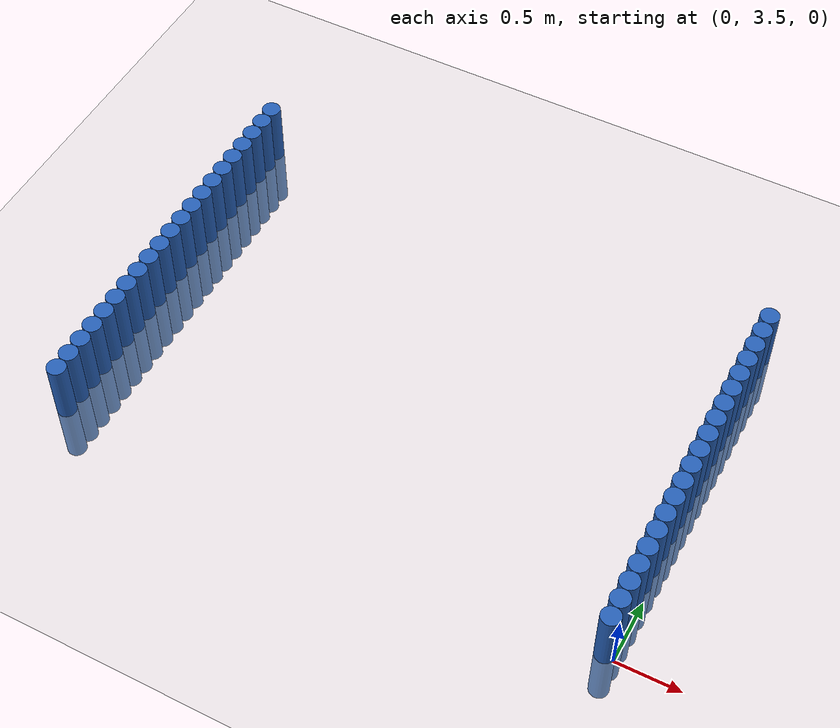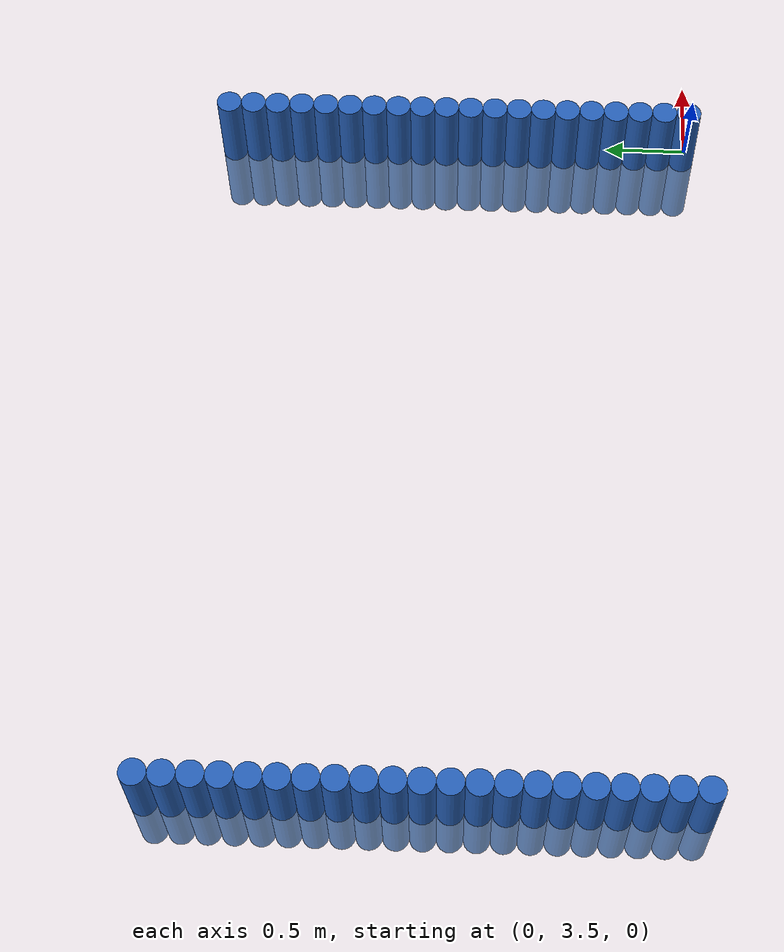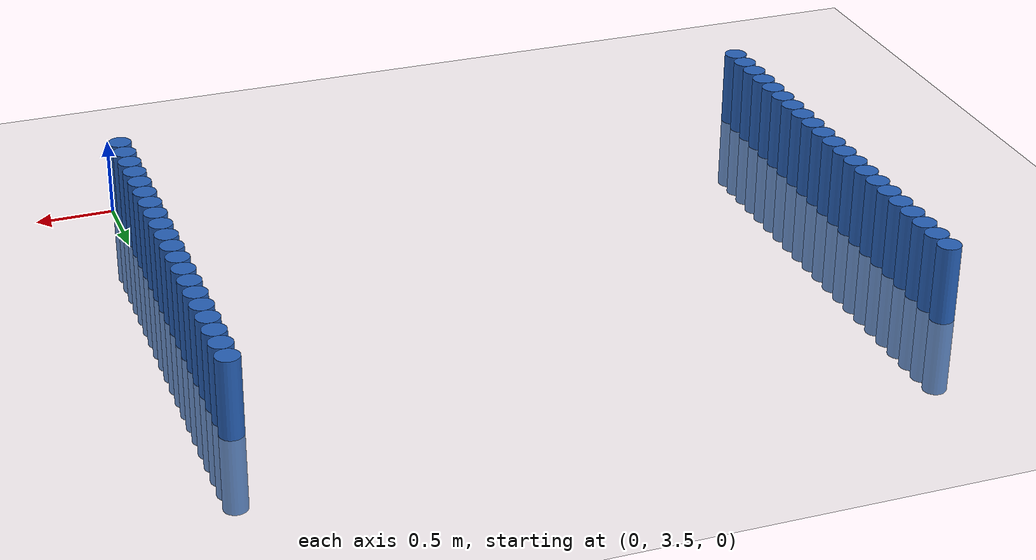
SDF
<sdf version="1.6">
 <world name="default">
  <model name="ground_plane">
   <static>1</static>
   <link name="link">
    <collision name="collision">
     <geometry><plane><normal>0 0 1</normal><size>100 100</size></plane></geometry>
     <surface><friction><ode><mu>100</mu><mu2>50</mu2></ode></friction></surface>
    </collision>
    <visual name="visual">
     <cast_shadows>0</cast_shadows>
     <geometry><plane><normal>0 0 1</normal><size>100 100</size></plane></geometry>
     <material>
      <script><uri>file://media/materials/scripts/gazebo.material</uri><name>Gazebo/Grey</name></script>
     </material>
    </visual>
   </link>
  </model>
  <model name="unit_cylinder_74">
   <static>1</static>
   <pose>-0.075000 3.525000 0.000000 0.000000 0.000000 0.000000</pose>
   <link name="link">
    <inertial>
     <mass>1</mass>
     <inertia><ixx>0.145833</ixx><ixy>0</ixy><ixz>0</ixz><iyy>0.145833</iyy><iyz>0</iyz><izz>0.125</izz></inertia>
    </inertial>
    <collision name="collision">
     <geometry><cylinder><radius>0.075000</radius><length>1</length></cylinder></geometry>
    </collision>
    <visual name="visual">
     <geometry><cylinder><radius>0.075000</radius><length>1</length></cylinder></geometry>
     <material>
      <ambient>0.152000 0.379000 0.720000 1</ambient>
      <diffuse>0.152000 0.379000 0.720000 1</diffuse>
     </material>
     <material>
      <script><name>Gazebo/Grey</name><uri>file://media/materials/scripts/gazebo.material</uri></script>
     </material>
    </visual>
   </link>
  </model>
  <model name="unit_cylinder_75">
   <static>1</static>
   <pose>-4.425000 3.525000 0.000000 0.000000 0.000000 0.000000</pose>
   <link name="link">
    <inertial>
     <mass>1</mass>
     <inertia><ixx>0.145833</ixx><ixy>0</ixy><ixz>0</ixz><iyy>0.145833</iyy><iyz>0</iyz><izz>0.125</izz></inertia>
    </inertial>
    <collision name="collision">
     <geometry><cylinder><radius>0.075000</radius><length>1</length></cylinder></geometry>
    </collision>
    <visual name="visual">
     <geometry><cylinder><radius>0.075000</radius><length>1</length></cylinder></geometry>
     <material>
      <ambient>0.152000 0.379000 0.720000 1</ambient>
      <diffuse>0.152000 0.379000 0.720000 1</diffuse>
     </material>
     <material>
      <script><name>Gazebo/Grey</name><uri>file://media/materials/scripts/gazebo.material</uri></script>
     </material>
    </visual>
   </link>
  </model>
  <model name="unit_cylinder_76">
   <static>1</static>
   <pose>-0.075000 3.675000 0.000000 0.000000 0.000000 0.000000</pose>
   <link name="link">
    <inertial>
     <mass>1</mass>
     <inertia><ixx>0.145833</ixx><ixy>0</ixy><ixz>0</ixz><iyy>0.145833</iyy><iyz>0</iyz><izz>0.125</izz></inertia>
    </inertial>
    <collision name="collision">
     <geometry><cylinder><radius>0.075000</radius><length>1</length></cylinder></geometry>
    </collision>
    <visual name="visual">
     <geometry><cylinder><radius>0.075000</radius><length>1</length></cylinder></geometry>
     <material>
      <ambient>0.152000 0.379000 0.720000 1</ambient>
      <diffuse>0.152000 0.379000 0.720000 1</diffuse>
     </material>
     <material>
      <script><name>Gazebo/Grey</name><uri>file://media/materials/scripts/gazebo.material</uri></script>
     </material>
    </visual>
   </link>
  </model>
  <model name="unit_cylinder_77">
   <static>1</static>
   <pose>-4.425000 3.675000 0.000000 0.000000 0.000000 0.000000</pose>
   <link name="link">
    <inertial>
     <mass>1</mass>
     <inertia><ixx>0.145833</ixx><ixy>0</ixy><ixz>0</ixz><iyy>0.145833</iyy><iyz>0</iyz><izz>0.125</izz></inertia>
    </inertial>
    <collision name="collision">
     <geometry><cylinder><radius>0.075000</radius><length>1</length></cylinder></geometry>
    </collision>
    <visual name="visual">
     <geometry><cylinder><radius>0.075000</radius><length>1</length></cylinder></geometry>
     <material>
      <ambient>0.152000 0.379000 0.720000 1</ambient>
      <diffuse>0.152000 0.379000 0.720000 1</diffuse>
     </material>
     <material>
      <script><name>Gazebo/Grey</name><uri>file://media/materials/scripts/gazebo.material</uri></script>
     </material>
    </visual>
   </link>
  </model>
  <model name="unit_cylinder_78">
   <static>1</static>
   <pose>-0.075000 3.825000 0.000000 0.000000 0.000000 0.000000</pose>
   <link name="link">
    <inertial>
     <mass>1</mass>
     <inertia><ixx>0.145833</ixx><ixy>0</ixy><ixz>0</ixz><iyy>0.145833</iyy><iyz>0</iyz><izz>0.125</izz></inertia>
    </inertial>
    <collision name="collision">
     <geometry><cylinder><radius>0.075000</radius><length>1</length></cylinder></geometry>
    </collision>
    <visual name="visual">
     <geometry><cylinder><radius>0.075000</radius><length>1</length></cylinder></geometry>
     <material>
      <ambient>0.152000 0.379000 0.720000 1</ambient>
      <diffuse>0.152000 0.379000 0.720000 1</diffuse>
     </material>
     <material>
      <script><name>Gazebo/Grey</name><uri>file://media/materials/scripts/gazebo.material</uri></script>
     </material>
    </visual>
   </link>
  </model>
  <model name="unit_cylinder_79">
   <static>1</static>
   <pose>-4.425000 3.825000 0.000000 0.000000 0.000000 0.000000</pose>
   <link name="link">
    <inertial>
     <mass>1</mass>
     <inertia><ixx>0.145833</ixx><ixy>0</ixy><ixz>0</ixz><iyy>0.145833</iyy><iyz>0</iyz><izz>0.125</izz></inertia>
    </inertial>
    <collision name="collision">
     <geometry><cylinder><radius>0.075000</radius><length>1</length></cylinder></geometry>
    </collision>
    <visual name="visual">
     <geometry><cylinder><radius>0.075000</radius><length>1</length></cylinder></geometry>
     <material>
      <ambient>0.152000 0.379000 0.720000 1</ambient>
      <diffuse>0.152000 0.379000 0.720000 1</diffuse>
     </material>
     <material>
      <script><name>Gazebo/Grey</name><uri>file://media/materials/scripts/gazebo.material</uri></script>
     </material>
    </visual>
   </link>
  </model>
  <model name="unit_cylinder_80">
   <static>1</static>
   <pose>-0.075000 3.975000 0.000000 0.000000 0.000000 0.000000</pose>
   <link name="link">
    <inertial>
     <mass>1</mass>
     <inertia><ixx>0.145833</ixx><ixy>0</ixy><ixz>0</ixz><iyy>0.145833</iyy><iyz>0</iyz><izz>0.125</izz></inertia>
    </inertial>
    <collision name="collision">
     <geometry><cylinder><radius>0.075000</radius><length>1</length></cylinder></geometry>
    </collision>
    <visual name="visual">
     <geometry><cylinder><radius>0.075000</radius><length>1</length></cylinder></geometry>
     <material>
      <ambient>0.152000 0.379000 0.720000 1</ambient>
      <diffuse>0.152000 0.379000 0.720000 1</diffuse>
     </material>
     <material>
      <script><name>Gazebo/Grey</name><uri>file://media/materials/scripts/gazebo.material</uri></script>
     </material>
    </visual>
   </link>
  </model>
  <model name="unit_cylinder_81">
   <static>1</static>
   <pose>-4.425000 3.975000 0.000000 0.000000 0.000000 0.000000</pose>
   <link name="link">
    <inertial>
     <mass>1</mass>
     <inertia><ixx>0.145833</ixx><ixy>0</ixy><ixz>0</ixz><iyy>0.145833</iyy><iyz>0</iyz><izz>0.125</izz></inertia>
    </inertial>
    <collision name="collision">
     <geometry><cylinder><radius>0.075000</radius><length>1</length></cylinder></geometry>
    </collision>
    <visual name="visual">
     <geometry><cylinder><radius>0.075000</radius><length>1</length></cylinder></geometry>
     <material>
      <ambient>0.152000 0.379000 0.720000 1</ambient>
      <diffuse>0.152000 0.379000 0.720000 1</diffuse>
     </material>
     <material>
      <script><name>Gazebo/Grey</name><uri>file://media/materials/scripts/gazebo.material</uri></script>
     </material>
    </visual>
   </link>
  </model>
  <model name="unit_cylinder_82">
   <static>1</static>
   <pose>-0.075000 4.125000 0.000000 0.000000 0.000000 0.000000</pose>
   <link name="link">
    <inertial>
     <mass>1</mass>
     <inertia><ixx>0.145833</ixx><ixy>0</ixy><ixz>0</ixz><iyy>0.145833</iyy><iyz>0</iyz><izz>0.125</izz></inertia>
    </inertial>
    <collision name="collision">
     <geometry><cylinder><radius>0.075000</radius><length>1</length></cylinder></geometry>
    </collision>
    <visual name="visual">
     <geometry><cylinder><radius>0.075000</radius><length>1</length></cylinder></geometry>
     <material>
      <ambient>0.152000 0.379000 0.720000 1</ambient>
      <diffuse>0.152000 0.379000 0.720000 1</diffuse>
     </material>
     <material>
      <script><name>Gazebo/Grey</name><uri>file://media/materials/scripts/gazebo.material</uri></script>
     </material>
    </visual>
   </link>
  </model>
  <model name="unit_cylinder_83">
   <static>1</static>
   <pose>-4.425000 4.125000 0.000000 0.000000 0.000000 0.000000</pose>
   <link name="link">
    <inertial>
     <mass>1</mass>
     <inertia><ixx>0.145833</ixx><ixy>0</ixy><ixz>0</ixz><iyy>0.145833</iyy><iyz>0</iyz><izz>0.125</izz></inertia>
    </inertial>
    <collision name="collision">
     <geometry><cylinder><radius>0.075000</radius><length>1</length></cylinder></geometry>
    </collision>
    <visual name="visual">
     <geometry><cylinder><radius>0.075000</radius><length>1</length></cylinder></geometry>
     <material>
      <ambient>0.152000 0.379000 0.720000 1</ambient>
      <diffuse>0.152000 0.379000 0.720000 1</diffuse>
     </material>
     <material>
      <script><name>Gazebo/Grey</name><uri>file://media/materials/scripts/gazebo.material</uri></script>
     </material>
    </visual>
   </link>
  </model>
  <model name="unit_cylinder_84">
   <static>1</static>
   <pose>-0.075000 4.275000 0.000000 0.000000 0.000000 0.000000</pose>
   <link name="link">
    <inertial>
     <mass>1</mass>
     <inertia><ixx>0.145833</ixx><ixy>0</ixy><ixz>0</ixz><iyy>0.145833</iyy><iyz>0</iyz><izz>0.125</izz></inertia>
    </inertial>
    <collision name="collision">
     <geometry><cylinder><radius>0.075000</radius><length>1</length></cylinder></geometry>
    </collision>
    <visual name="visual">
     <geometry><cylinder><radius>0.075000</radius><length>1</length></cylinder></geometry>
     <material>
      <ambient>0.152000 0.379000 0.720000 1</ambient>
      <diffuse>0.152000 0.379000 0.720000 1</diffuse>
     </material>
     <material>
      <script><name>Gazebo/Grey</name><uri>file://media/materials/scripts/gazebo.material</uri></script>
     </material>
    </visual>
   </link>
  </model>
  <model name="unit_cylinder_85">
   <static>1</static>
   <pose>-4.425000 4.275000 0.000000 0.000000 0.000000 0.000000</pose>
   <link name="link">
    <inertial>
     <mass>1</mass>
     <inertia><ixx>0.145833</ixx><ixy>0</ixy><ixz>0</ixz><iyy>0.145833</iyy><iyz>0</iyz><izz>0.125</izz></inertia>
    </inertial>
    <collision name="collision">
     <geometry><cylinder><radius>0.075000</radius><length>1</length></cylinder></geometry>
    </collision>
    <visual name="visual">
     <geometry><cylinder><radius>0.075000</radius><length>1</length></cylinder></geometry>
     <material>
      <ambient>0.152000 0.379000 0.720000 1</ambient>
      <diffuse>0.152000 0.379000 0.720000 1</diffuse>
     </material>
     <material>
      <script><name>Gazebo/Grey</name><uri>file://media/materials/scripts/gazebo.material</uri></script>
     </material>
    </visual>
   </link>
  </model>
  <model name="unit_cylinder_86">
   <static>1</static>
   <pose>-0.075000 4.425000 0.000000 0.000000 0.000000 0.000000</pose>
   <link name="link">
    <inertial>
     <mass>1</mass>
     <inertia><ixx>0.145833</ixx><ixy>0</ixy><ixz>0</ixz><iyy>0.145833</iyy><iyz>0</iyz><izz>0.125</izz></inertia>
    </inertial>
    <collision name="collision">
     <geometry><cylinder><radius>0.075000</radius><length>1</length></cylinder></geometry>
    </collision>
    <visual name="visual">
     <geometry><cylinder><radius>0.075000</radius><length>1</length></cylinder></geometry>
     <material>
      <ambient>0.152000 0.379000 0.720000 1</ambient>
      <diffuse>0.152000 0.379000 0.720000 1</diffuse>
     </material>
     <material>
      <script><name>Gazebo/Grey</name><uri>file://media/materials/scripts/gazebo.material</uri></script>
     </material>
    </visual>
   </link>
  </model>
  <model name="unit_cylinder_87">
   <static>1</static>
   <pose>-4.425000 4.425000 0.000000 0.000000 0.000000 0.000000</pose>
   <link name="link">
    <inertial>
     <mass>1</mass>
     <inertia><ixx>0.145833</ixx><ixy>0</ixy><ixz>0</ixz><iyy>0.145833</iyy><iyz>0</iyz><izz>0.125</izz></inertia>
    </inertial>
    <collision name="collision">
     <geometry><cylinder><radius>0.075000</radius><length>1</length></cylinder></geometry>
    </collision>
    <visual name="visual">
     <geometry><cylinder><radius>0.075000</radius><length>1</length></cylinder></geometry>
     <material>
      <ambient>0.152000 0.379000 0.720000 1</ambient>
      <diffuse>0.152000 0.379000 0.720000 1</diffuse>
     </material>
     <material>
      <script><name>Gazebo/Grey</name><uri>file://media/materials/scripts/gazebo.material</uri></script>
     </material>
    </visual>
   </link>
  </model>
  <model name="unit_cylinder_88">
   <static>1</static>
   <pose>-0.075000 4.575000 0.000000 0.000000 0.000000 0.000000</pose>
   <link name="link">
    <inertial>
     <mass>1</mass>
     <inertia><ixx>0.145833</ixx><ixy>0</ixy><ixz>0</ixz><iyy>0.145833</iyy><iyz>0</iyz><izz>0.125</izz></inertia>
    </inertial>
    <collision name="collision">
     <geometry><cylinder><radius>0.075000</radius><length>1</length></cylinder></geometry>
    </collision>
    <visual name="visual">
     <geometry><cylinder><radius>0.075000</radius><length>1</length></cylinder></geometry>
     <material>
      <ambient>0.152000 0.379000 0.720000 1</ambient>
      <diffuse>0.152000 0.379000 0.720000 1</diffuse>
     </material>
     <material>
      <script><name>Gazebo/Grey</name><uri>file://media/materials/scripts/gazebo.material</uri></script>
     </material>
    </visual>
   </link>
  </model>
  <model name="unit_cylinder_89">
   <static>1</static>
   <pose>-4.425000 4.575000 0.000000 0.000000 0.000000 0.000000</pose>
   <link name="link">
    <inertial>
     <mass>1</mass>
     <inertia><ixx>0.145833</ixx><ixy>0</ixy><ixz>0</ixz><iyy>0.145833</iyy><iyz>0</iyz><izz>0.125</izz></inertia>
    </inertial>
    <collision name="collision">
     <geometry><cylinder><radius>0.075000</radius><length>1</length></cylinder></geometry>
    </collision>
    <visual name="visual">
     <geometry><cylinder><radius>0.075000</radius><length>1</length></cylinder></geometry>
     <material>
      <ambient>0.152000 0.379000 0.720000 1</ambient>
      <diffuse>0.152000 0.379000 0.720000 1</diffuse>
     </material>
     <material>
      <script><name>Gazebo/Grey</name><uri>file://media/materials/scripts/gazebo.material</uri></script>
     </material>
    </visual>
   </link>
  </model>
  <model name="unit_cylinder_90">
   <static>1</static>
   <pose>-0.075000 4.725000 0.000000 0.000000 0.000000 0.000000</pose>
   <link name="link">
    <inertial>
     <mass>1</mass>
     <inertia><ixx>0.145833</ixx><ixy>0</ixy><ixz>0</ixz><iyy>0.145833</iyy><iyz>0</iyz><izz>0.125</izz></inertia>
    </inertial>
    <collision name="collision">
     <geometry><cylinder><radius>0.075000</radius><length>1</length></cylinder></geometry>
    </collision>
    <visual name="visual">
     <geometry><cylinder><radius>0.075000</radius><length>1</length></cylinder></geometry>
     <material>
      <ambient>0.152000 0.379000 0.720000 1</ambient>
      <diffuse>0.152000 0.379000 0.720000 1</diffuse>
     </material>
     <material>
      <script><name>Gazebo/Grey</name><uri>file://media/materials/scripts/gazebo.material</uri></script>
     </material>
    </visual>
   </link>
  </model>
  <model name="unit_cylinder_91">
   <static>1</static>
   <pose>-4.425000 4.725000 0.000000 0.000000 0.000000 0.000000</pose>
   <link name="link">
    <inertial>
     <mass>1</mass>
     <inertia><ixx>0.145833</ixx><ixy>0</ixy><ixz>0</ixz><iyy>0.145833</iyy><iyz>0</iyz><izz>0.125</izz></inertia>
    </inertial>
    <collision name="collision">
     <geometry><cylinder><radius>0.075000</radius><length>1</length></cylinder></geometry>
    </collision>
    <visual name="visual">
     <geometry><cylinder><radius>0.075000</radius><length>1</length></cylinder></geometry>
     <material>
      <ambient>0.152000 0.379000 0.720000 1</ambient>
      <diffuse>0.152000 0.379000 0.720000 1</diffuse>
     </material>
     <material>
      <script><name>Gazebo/Grey</name><uri>file://media/materials/scripts/gazebo.material</uri></script>
     </material>
    </visual>
   </link>
  </model>
  <model name="unit_cylinder_92">
   <static>1</static>
   <pose>-0.075000 4.875000 0.000000 0.000000 0.000000 0.000000</pose>
   <link name="link">
    <inertial>
     <mass>1</mass>
     <inertia><ixx>0.145833</ixx><ixy>0</ixy><ixz>0</ixz><iyy>0.145833</iyy><iyz>0</iyz><izz>0.125</izz></inertia>
    </inertial>
    <collision name="collision">
     <geometry><cylinder><radius>0.075000</radius><length>1</length></cylinder></geometry>
    </collision>
    <visual name="visual">
     <geometry><cylinder><radius>0.075000</radius><length>1</length></cylinder></geometry>
     <material>
      <ambient>0.152000 0.379000 0.720000 1</ambient>
      <diffuse>0.152000 0.379000 0.720000 1</diffuse>
     </material>
     <material>
      <script><name>Gazebo/Grey</name><uri>file://media/materials/scripts/gazebo.material</uri></script>
     </material>
    </visual>
   </link>
  </model>
  <model name="unit_cylinder_93">
   <static>1</static>
   <pose>-4.425000 4.875000 0.000000 0.000000 0.000000 0.000000</pose>
   <link name="link">
    <inertial>
     <mass>1</mass>
     <inertia><ixx>0.145833</ixx><ixy>0</ixy><ixz>0</ixz><iyy>0.145833</iyy><iyz>0</iyz><izz>0.125</izz></inertia>
    </inertial>
    <collision name="collision">
     <geometry><cylinder><radius>0.075000</radius><length>1</length></cylinder></geometry>
    </collision>
    <visual name="visual">
     <geometry><cylinder><radius>0.075000</radius><length>1</length></cylinder></geometry>
     <material>
      <ambient>0.152000 0.379000 0.720000 1</ambient>
      <diffuse>0.152000 0.379000 0.720000 1</diffuse>
     </material>
     <material>
      <script><name>Gazebo/Grey</name><uri>file://media/materials/scripts/gazebo.material</uri></script>
     </material>
    </visual>
   </link>
  </model>
  <model name="unit_cylinder_94">
   <static>1</static>
   <pose>-0.075000 5.025000 0.000000 0.000000 0.000000 0.000000</pose>
   <link name="link">
    <inertial>
     <mass>1</mass>
     <inertia><ixx>0.145833</ixx><ixy>0</ixy><ixz>0</ixz><iyy>0.145833</iyy><iyz>0</iyz><izz>0.125</izz></inertia>
    </inertial>
    <collision name="collision">
     <geometry><cylinder><radius>0.075000</radius><length>1</length></cylinder></geometry>
    </collision>
    <visual name="visual">
     <geometry><cylinder><radius>0.075000</radius><length>1</length></cylinder></geometry>
     <material>
      <ambient>0.152000 0.379000 0.720000 1</ambient>
      <diffuse>0.152000 0.379000 0.720000 1</diffuse>
     </material>
     <material>
      <script><name>Gazebo/Grey</name><uri>file://media/materials/scripts/gazebo.material</uri></script>
     </material>
    </visual>
   </link>
  </model>
  <model name="unit_cylinder_95">
   <static>1</static>
   <pose>-4.425000 5.025000 0.000000 0.000000 0.000000 0.000000</pose>
   <link name="link">
    <inertial>
     <mass>1</mass>
     <inertia><ixx>0.145833</ixx><ixy>0</ixy><ixz>0</ixz><iyy>0.145833</iyy><iyz>0</iyz><izz>0.125</izz></inertia>
    </inertial>
    <collision name="collision">
     <geometry><cylinder><radius>0.075000</radius><length>1</length></cylinder></geometry>
    </collision>
    <visual name="visual">
     <geometry><cylinder><radius>0.075000</radius><length>1</length></cylinder></geometry>
     <material>
      <ambient>0.152000 0.379000 0.720000 1</ambient>
      <diffuse>0.152000 0.379000 0.720000 1</diffuse>
     </material>
     <material>
      <script><name>Gazebo/Grey</name><uri>file://media/materials/scripts/gazebo.material</uri></script>
     </material>
    </visual>
   </link>
  </model>
  <model name="unit_cylinder_96">
   <static>1</static>
   <pose>-4.425000 5.175000 0.000000 0.000000 0.000000 0.000000</pose>
   <link name="link">
    <inertial>
     <mass>1</mass>
     <inertia><ixx>0.145833</ixx><ixy>0</ixy><ixz>0</ixz><iyy>0.145833</iyy><iyz>0</iyz><izz>0.125</izz></inertia>
    </inertial>
    <collision name="collision">
     <geometry><cylinder><radius>0.075000</radius><length>1</length></cylinder></geometry>
    </collision>
    <visual name="visual">
     <geometry><cylinder><radius>0.075000</radius><length>1</length></cylinder></geometry>
     <material>
      <ambient>0.152000 0.379000 0.720000 1</ambient>
      <diffuse>0.152000 0.379000 0.720000 1</diffuse>
     </material>
     <material>
      <script><name>Gazebo/Grey</name><uri>file://media/materials/scripts/gazebo.material</uri></script>
     </material>
    </visual>
   </link>
  </model>
  <model name="unit_cylinder_97">
   <static>1</static>
   <pose>-4.425000 5.325000 0.000000 0.000000 0.000000 0.000000</pose>
   <link name="link">
    <inertial>
     <mass>1</mass>
     <inertia><ixx>0.145833</ixx><ixy>0</ixy><ixz>0</ixz><iyy>0.145833</iyy><iyz>0</iyz><izz>0.125</izz></inertia>
    </inertial>
    <collision name="collision">
     <geometry><cylinder><radius>0.075000</radius><length>1</length></cylinder></geometry>
    </collision>
    <visual name="visual">
     <geometry><cylinder><radius>0.075000</radius><length>1</length></cylinder></geometry>
     <material>
      <ambient>0.152000 0.379000 0.720000 1</ambient>
      <diffuse>0.152000 0.379000 0.720000 1</diffuse>
     </material>
     <material>
      <script><name>Gazebo/Grey</name><uri>file://media/materials/scripts/gazebo.material</uri></script>
     </material>
    </visual>
   </link>
  </model>
  <model name="unit_cylinder_98">
   <static>1</static>
   <pose>-4.425000 5.475000 0.000000 0.000000 0.000000 0.000000</pose>
   <link name="link">
    <inertial>
     <mass>1</mass>
     <inertia><ixx>0.145833</ixx><ixy>0</ixy><ixz>0</ixz><iyy>0.145833</iyy><iyz>0</iyz><izz>0.125</izz></inertia>
    </inertial>
    <collision name="collision">
     <geometry><cylinder><radius>0.075000</radius><length>1</length></cylinder></geometry>
    </collision>
    <visual name="visual">
     <geometry><cylinder><radius>0.075000</radius><length>1</length></cylinder></geometry>
     <material>
      <ambient>0.152000 0.379000 0.720000 1</ambient>
      <diffuse>0.152000 0.379000 0.720000 1</diffuse>
     </material>
     <material>
      <script><name>Gazebo/Grey</name><uri>file://media/materials/scripts/gazebo.material</uri></script>
     </material>
    </visual>
   </link>
  </model>
  <model name="unit_cylinder_99">
   <static>1</static>
   <pose>-4.425000 5.625000 0.000000 0.000000 0.000000 0.000000</pose>
   <link name="link">
    <inertial>
     <mass>1</mass>
     <inertia><ixx>0.145833</ixx><ixy>0</ixy><ixz>0</ixz><iyy>0.145833</iyy><iyz>0</iyz><izz>0.125</izz></inertia>
    </inertial>
    <collision name="collision">
     <geometry><cylinder><radius>0.075000</radius><length>1</length></cylinder></geometry>
    </collision>
    <visual name="visual">
     <geometry><cylinder><radius>0.075000</radius><length>1</length></cylinder></geometry>
     <material>
      <ambient>0.152000 0.379000 0.720000 1</ambient>
      <diffuse>0.152000 0.379000 0.720000 1</diffuse>
     </material>
     <material>
      <script><name>Gazebo/Grey</name><uri>file://media/materials/scripts/gazebo.material</uri></script>
     </material>
    </visual>
   </link>
  </model>
  <model name="unit_cylinder_100">
   <static>1</static>
   <pose>-4.425000 5.775000 0.000000 0.000000 0.000000 0.000000</pose>
   <link name="link">
    <inertial>
     <mass>1</mass>
     <inertia><ixx>0.145833</ixx><ixy>0</ixy><ixz>0</ixz><iyy>0.145833</iyy><iyz>0</iyz><izz>0.125</izz></inertia>
    </inertial>
    <collision name="collision">
     <geometry><cylinder><radius>0.075000</radius><length>1</length></cylinder></geometry>
    </collision>
    <visual name="visual">
     <geometry><cylinder><radius>0.075000</radius><length>1</length></cylinder></geometry>
     <material>
      <ambient>0.152000 0.379000 0.720000 1</ambient>
      <diffuse>0.152000 0.379000 0.720000 1</diffuse>
     </material>
     <material>
      <script><name>Gazebo/Grey</name><uri>file://media/materials/scripts/gazebo.material</uri></script>
     </material>
    </visual>
   </link>
  </model>
  <model name="unit_cylinder_101">
   <static>1</static>
   <pose>-4.425000 5.925000 0.000000 0.000000 0.000000 0.000000</pose>
   <link name="link">
    <inertial>
     <mass>1</mass>
     <inertia><ixx>0.145833</ixx><ixy>0</ixy><ixz>0</ixz><iyy>0.145833</iyy><iyz>0</iyz><izz>0.125</izz></inertia>
    </inertial>
    <collision name="collision">
     <geometry><cylinder><radius>0.075000</radius><length>1</length></cylinder></geometry>
    </collision>
    <visual name="visual">
     <geometry><cylinder><radius>0.075000</radius><length>1</length></cylinder></geometry>
     <material>
      <ambient>0.152000 0.379000 0.720000 1</ambient>
      <diffuse>0.152000 0.379000 0.720000 1</diffuse>
     </material>
     <material>
      <script><name>Gazebo/Grey</name><uri>file://media/materials/scripts/gazebo.material</uri></script>
     </material>
    </visual>
   </link>
  </model>
  <model name="unit_cylinder_102">
   <static>1</static>
   <pose>-4.425000 6.075000 0.000000 0.000000 0.000000 0.000000</pose>
   <link name="link">
    <inertial>
     <mass>1</mass>
     <inertia><ixx>0.145833</ixx><ixy>0</ixy><ixz>0</ixz><iyy>0.145833</iyy><iyz>0</iyz><izz>0.125</izz></inertia>
    </inertial>
    <collision name="collision">
     <geometry><cylinder><radius>0.075000</radius><length>1</length></cylinder></geometry>
    </collision>
    <visual name="visual">
     <geometry><cylinder><radius>0.075000</radius><length>1</length></cylinder></geometry>
     <material>
      <ambient>0.152000 0.379000 0.720000 1</ambient>
      <diffuse>0.152000 0.379000 0.720000 1</diffuse>
     </material>
     <material>
      <script><name>Gazebo/Grey</name><uri>file://media/materials/scripts/gazebo.material</uri></script>
     </material>
    </visual>
   </link>
  </model>
  <model name="unit_cylinder_103">
   <static>1</static>
   <pose>-4.425000 6.225000 0.000000 0.000000 0.000000 0.000000</pose>
   <link name="link">
    <inertial>
     <mass>1</mass>
     <inertia><ixx>0.145833</ixx><ixy>0</ixy><ixz>0</ixz><iyy>0.145833</iyy><iyz>0</iyz><izz>0.125</izz></inertia>
    </inertial>
    <collision name="collision">
     <geometry><cylinder><radius>0.075000</radius><length>1</length></cylinder></geometry>
    </collision>
    <visual name="visual">
     <geometry><cylinder><radius>0.075000</radius><length>1</length></cylinder></geometry>
     <material>
      <ambient>0.152000 0.379000 0.720000 1</ambient>
      <diffuse>0.152000 0.379000 0.720000 1</diffuse>
     </material>
     <material>
      <script><name>Gazebo/Grey</name><uri>file://media/materials/scripts/gazebo.material</uri></script>
     </material>
    </visual>
   </link>
  </model>
  <model name="unit_cylinder_104">
   <static>1</static>
   <pose>-4.425000 6.375000 0.000000 0.000000 0.000000 0.000000</pose>
   <link name="link">
    <inertial>
     <mass>1</mass>
     <inertia><ixx>0.145833</ixx><ixy>0</ixy><ixz>0</ixz><iyy>0.145833</iyy><iyz>0</iyz><izz>0.125</izz></inertia>
    </inertial>
    <collision name="collision">
     <geometry><cylinder><radius>0.075000</radius><length>1</length></cylinder></geometry>
    </collision>
    <visual name="visual">
     <geometry><cylinder><radius>0.075000</radius><length>1</length></cylinder></geometry>
     <material>
      <ambient>0.152000 0.379000 0.720000 1</ambient>
      <diffuse>0.152000 0.379000 0.720000 1</diffuse>
     </material>
     <material>
      <script><name>Gazebo/Grey</name><uri>file://media/materials/scripts/gazebo.material</uri></script>
     </material>
    </visual>
   </link>
  </model>
  <model name="unit_cylinder_105">
   <static>1</static>
   <pose>-4.425000 6.525000 0.000000 0.000000 0.000000 0.000000</pose>
   <link name="link">
    <inertial>
     <mass>1</mass>
     <inertia><ixx>0.145833</ixx><ixy>0</ixy><ixz>0</ixz><iyy>0.145833</iyy><iyz>0</iyz><izz>0.125</izz></inertia>
    </inertial>
    <collision name="collision">
     <geometry><cylinder><radius>0.075000</radius><length>1</length></cylinder></geometry>
    </collision>
    <visual name="visual">
     <geometry><cylinder><radius>0.075000</radius><length>1</length></cylinder></geometry>
     <material>
      <ambient>0.152000 0.379000 0.720000 1</ambient>
      <diffuse>0.152000 0.379000 0.720000 1</diffuse>
     </material>
     <material>
      <script><name>Gazebo/Grey</name><uri>file://media/materials/scripts/gazebo.material</uri></script>
     </material>
    </visual>
   </link>
  </model>
  <model name="unit_cylinder_126">
   <static>1</static>
   <pose>-0.075000 5.175000 0.000000 0.000000 0.000000 0.000000</pose>
   <link name="link">
    <inertial>
     <mass>1</mass>
     <inertia><ixx>0.145833</ixx><ixy>0</ixy><ixz>0</ixz><iyy>0.145833</iyy><iyz>0</iyz><izz>0.125</izz></inertia>
    </inertial>
    <collision name="collision">
     <geometry><cylinder><radius>0.075000</radius><length>1</length></cylinder></geometry>
    </collision>
    <visual name="visual">
     <geometry><cylinder><radius>0.075000</radius><length>1</length></cylinder></geometry>
     <material>
      <ambient>0.152000 0.379000 0.720000 1</ambient>
      <diffuse>0.152000 0.379000 0.720000 1</diffuse>
     </material>
     <material>
      <script><name>Gazebo/Grey</name><uri>file://media/materials/scripts/gazebo.material</uri></script>
     </material>
    </visual>
   </link>
  </model>
  <model name="unit_cylinder_127">
   <static>1</static>
   <pose>-0.075000 5.325000 0.000000 0.000000 0.000000 0.000000</pose>
   <link name="link">
    <inertial>
     <mass>1</mass>
     <inertia><ixx>0.145833</ixx><ixy>0</ixy><ixz>0</ixz><iyy>0.145833</iyy><iyz>0</iyz><izz>0.125</izz></inertia>
    </inertial>
    <collision name="collision">
     <geometry><cylinder><radius>0.075000</radius><length>1</length></cylinder></geometry>
    </collision>
    <visual name="visual">
     <geometry><cylinder><radius>0.075000</radius><length>1</length></cylinder></geometry>
     <material>
      <ambient>0.152000 0.379000 0.720000 1</ambient>
      <diffuse>0.152000 0.379000 0.720000 1</diffuse>
     </material>
     <material>
      <script><name>Gazebo/Grey</name><uri>file://media/materials/scripts/gazebo.material</uri></script>
     </material>
    </visual>
   </link>
  </model>
  <model name="unit_cylinder_128">
   <static>1</static>
   <pose>-0.075000 5.475000 0.000000 0.000000 0.000000 0.000000</pose>
   <link name="link">
    <inertial>
     <mass>1</mass>
     <inertia><ixx>0.145833</ixx><ixy>0</ixy><ixz>0</ixz><iyy>0.145833</iyy><iyz>0</iyz><izz>0.125</izz></inertia>
    </inertial>
    <collision name="collision">
     <geometry><cylinder><radius>0.075000</radius><length>1</length></cylinder></geometry>
    </collision>
    <visual name="visual">
     <geometry><cylinder><radius>0.075000</radius><length>1</length></cylinder></geometry>
     <material>
      <ambient>0.152000 0.379000 0.720000 1</ambient>
      <diffuse>0.152000 0.379000 0.720000 1</diffuse>
     </material>
     <material>
      <script><name>Gazebo/Grey</name><uri>file://media/materials/scripts/gazebo.material</uri></script>
     </material>
    </visual>
   </link>
  </model>
  <model name="unit_cylinder_129">
   <static>1</static>
   <pose>-0.075000 5.625000 0.000000 0.000000 0.000000 0.000000</pose>
   <link name="link">
    <inertial>
     <mass>1</mass>
     <inertia><ixx>0.145833</ixx><ixy>0</ixy><ixz>0</ixz><iyy>0.145833</iyy><iyz>0</iyz><izz>0.125</izz></inertia>
    </inertial>
    <collision name="collision">
     <geometry><cylinder><radius>0.075000</radius><length>1</length></cylinder></geometry>
    </collision>
    <visual name="visual">
     <geometry><cylinder><radius>0.075000</radius><length>1</length></cylinder></geometry>
     <material>
      <ambient>0.152000 0.379000 0.720000 1</ambient>
      <diffuse>0.152000 0.379000 0.720000 1</diffuse>
     </material>
     <material>
      <script><name>Gazebo/Grey</name><uri>file://media/materials/scripts/gazebo.material</uri></script>
     </material>
    </visual>
   </link>
  </model>
  <model name="unit_cylinder_130">
   <static>1</static>
   <pose>-0.075000 5.775000 0.000000 0.000000 0.000000 0.000000</pose>
   <link name="link">
    <inertial>
     <mass>1</mass>
     <inertia><ixx>0.145833</ixx><ixy>0</ixy><ixz>0</ixz><iyy>0.145833</iyy><iyz>0</iyz><izz>0.125</izz></inertia>
    </inertial>
    <collision name="collision">
     <geometry><cylinder><radius>0.075000</radius><length>1</length></cylinder></geometry>
    </collision>
    <visual name="visual">
     <geometry><cylinder><radius>0.075000</radius><length>1</length></cylinder></geometry>
     <material>
      <ambient>0.152000 0.379000 0.720000 1</ambient>
      <diffuse>0.152000 0.379000 0.720000 1</diffuse>
     </material>
     <material>
      <script><name>Gazebo/Grey</name><uri>file://media/materials/scripts/gazebo.material</uri></script>
     </material>
    </visual>
   </link>
  </model>
  <model name="unit_cylinder_131">
   <static>1</static>
   <pose>-0.075000 5.925000 0.000000 0.000000 0.000000 0.000000</pose>
   <link name="link">
    <inertial>
     <mass>1</mass>
     <inertia><ixx>0.145833</ixx><ixy>0</ixy><ixz>0</ixz><iyy>0.145833</iyy><iyz>0</iyz><izz>0.125</izz></inertia>
    </inertial>
    <collision name="collision">
     <geometry><cylinder><radius>0.075000</radius><length>1</length></cylinder></geometry>
    </collision>
    <visual name="visual">
     <geometry><cylinder><radius>0.075000</radius><length>1</length></cylinder></geometry>
     <material>
      <ambient>0.152000 0.379000 0.720000 1</ambient>
      <diffuse>0.152000 0.379000 0.720000 1</diffuse>
     </material>
     <material>
      <script><name>Gazebo/Grey</name><uri>file://media/materials/scripts/gazebo.material</uri></script>
     </material>
    </visual>
   </link>
  </model>
  <model name="unit_cylinder_132">
   <static>1</static>
   <pose>-0.075000 6.075000 0.000000 0.000000 0.000000 0.000000</pose>
   <link name="link">
    <inertial>
     <mass>1</mass>
     <inertia><ixx>0.145833</ixx><ixy>0</ixy><ixz>0</ixz><iyy>0.145833</iyy><iyz>0</iyz><izz>0.125</izz></inertia>
    </inertial>
    <collision name="collision">
     <geometry><cylinder><radius>0.075000</radius><length>1</length></cylinder></geometry>
    </collision>
    <visual name="visual">
     <geometry><cylinder><radius>0.075000</radius><length>1</length></cylinder></geometry>
     <material>
      <ambient>0.152000 0.379000 0.720000 1</ambient>
      <diffuse>0.152000 0.379000 0.720000 1</diffuse>
     </material>
     <material>
      <script><name>Gazebo/Grey</name><uri>file://media/materials/scripts/gazebo.material</uri></script>
     </material>
    </visual>
   </link>
  </model>
  <model name="unit_cylinder_133">
   <static>1</static>
   <pose>-0.075000 6.225000 0.000000 0.000000 0.000000 0.000000</pose>
   <link name="link">
    <inertial>
     <mass>1</mass>
     <inertia><ixx>0.145833</ixx><ixy>0</ixy><ixz>0</ixz><iyy>0.145833</iyy><iyz>0</iyz><izz>0.125</izz></inertia>
    </inertial>
    <collision name="collision">
     <geometry><cylinder><radius>0.075000</radius><length>1</length></cylinder></geometry>
    </collision>
    <visual name="visual">
     <geometry><cylinder><radius>0.075000</radius><length>1</length></cylinder></geometry>
     <material>
      <ambient>0.152000 0.379000 0.720000 1</ambient>
      <diffuse>0.152000 0.379000 0.720000 1</diffuse>
     </material>
     <material>
      <script><name>Gazebo/Grey</name><uri>file://media/materials/scripts/gazebo.material</uri></script>
     </material>
    </visual>
   </link>
  </model>
  <model name="unit_cylinder_134">
   <static>1</static>
   <pose>-0.075000 6.375000 0.000000 0.000000 0.000000 0.000000</pose>
   <link name="link">
    <inertial>
     <mass>1</mass>
     <inertia><ixx>0.145833</ixx><ixy>0</ixy><ixz>0</ixz><iyy>0.145833</iyy><iyz>0</iyz><izz>0.125</izz></inertia>
    </inertial>
    <collision name="collision">
     <geometry><cylinder><radius>0.075000</radius><length>1</length></cylinder></geometry>
    </collision>
    <visual name="visual">
     <geometry><cylinder><radius>0.075000</radius><length>1</length></cylinder></geometry>
     <material>
      <ambient>0.152000 0.379000 0.720000 1</ambient>
      <diffuse>0.152000 0.379000 0.720000 1</diffuse>
     </material>
     <material>
      <script><name>Gazebo/Grey</name><uri>file://media/materials/scripts/gazebo.material</uri></script>
     </material>
    </visual>
   </link>
  </model>
 </world>
</sdf>
